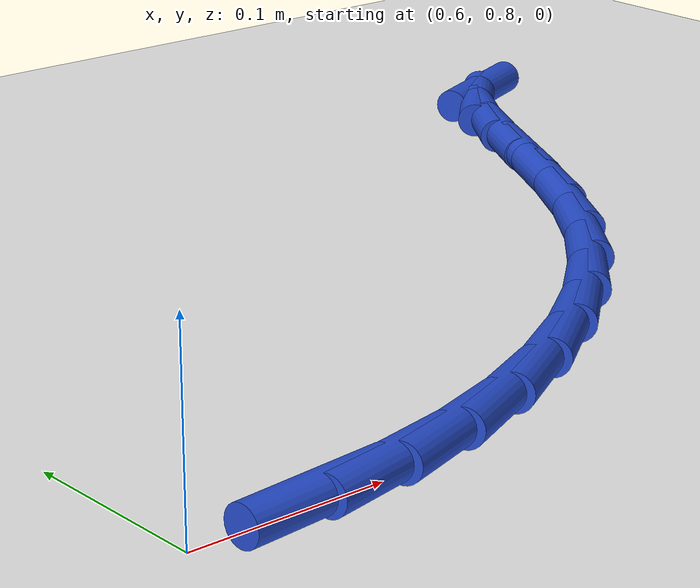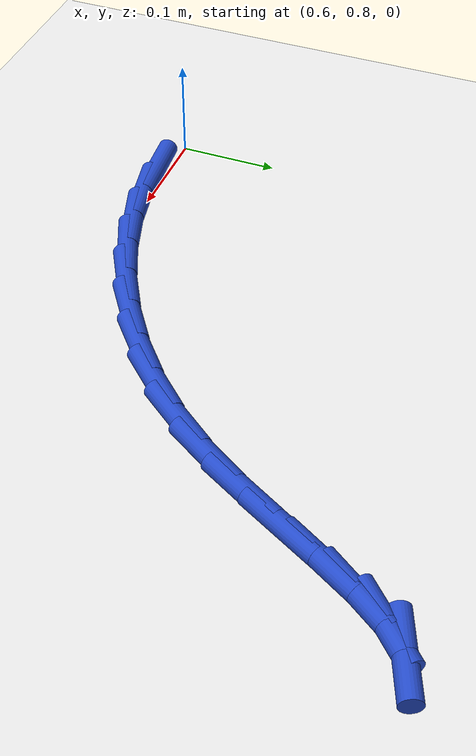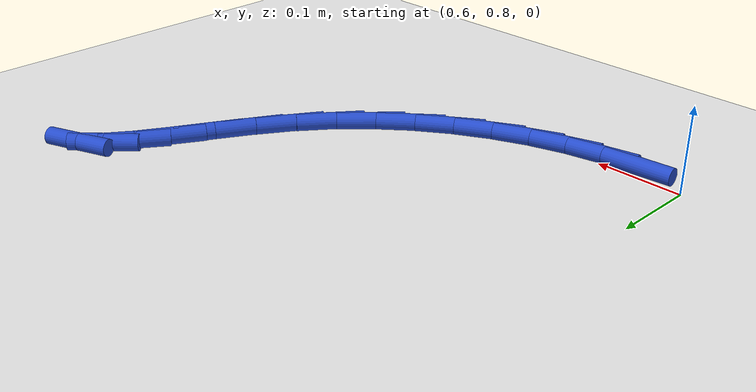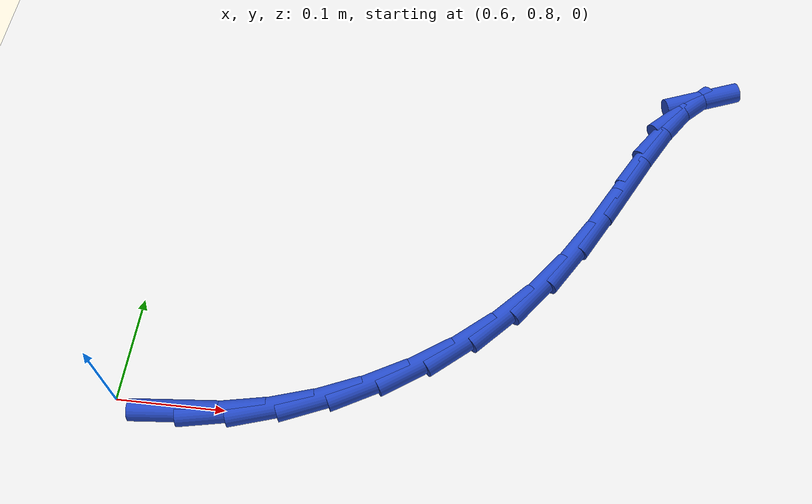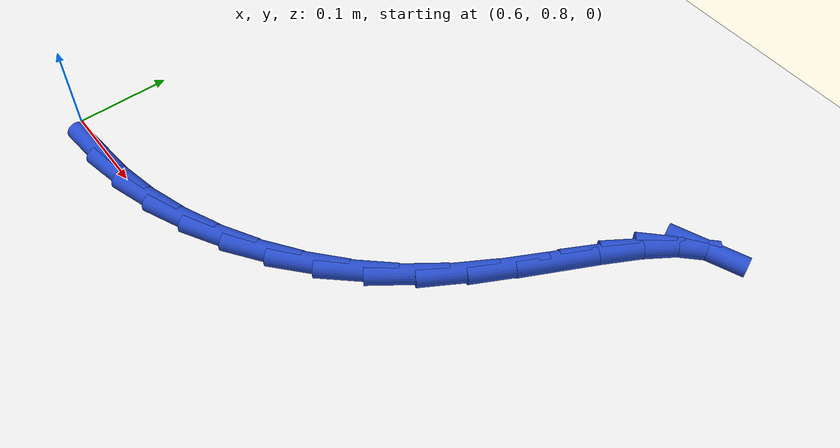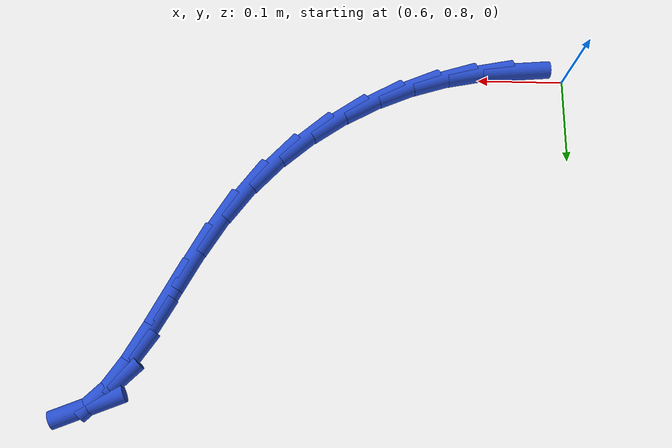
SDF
<sdf version="1.6">
 <world name="default">
  <model name="ground_plane">
   <static>1</static>
   <link name="link">
    <collision name="collision">
     <geometry><plane><normal>0 0 1</normal><size>100 100</size></plane></geometry>
     <surface><friction><ode><mu>100</mu><mu2>50</mu2></ode></friction></surface>
    </collision>
    <visual name="visual">
     <cast_shadows>0</cast_shadows>
     <geometry><plane><normal>0 0 1</normal><size>100 100</size></plane></geometry>
     <material>
      <script><uri>file://media/materials/scripts/gazebo.material</uri><name>Gazebo/WhiteGlow</name></script>
     </material>
    </visual>
   </link>
  </model>
  <model name="line">
   <link name="link_32">
    <pose>0.6573291913371824 0.7916038501465174 0.01 0 1.57 0.08912874974139268</pose>
    <collision name="collision">
     <geometry><cylinder><radius>0.01</radius><length>0.08</length></cylinder></geometry>
    </collision>
    <visual name="visual">
     <material>
      <script><name>Gazebo/Blue</name><uri>file://media/materials/scripts/gazebo.material</uri></script>
     </material>
     <geometry><cylinder><radius>0.01</radius><length>0.08</length></cylinder></geometry>
    </visual>
   </link>
   <link name="link_33">
    <pose>0.6993620464970786 0.7953601378137694 0.01 0 1.57 0.2022764824054154</pose>
    <collision name="collision">
     <geometry><cylinder><radius>0.01</radius><length>0.08</length></cylinder></geometry>
    </collision>
    <visual name="visual">
     <material>
      <script><name>Gazebo/Blue</name><uri>file://media/materials/scripts/gazebo.material</uri></script>
     </material>
     <geometry><cylinder><radius>0.01</radius><length>0.08</length></cylinder></geometry>
    </visual>
   </link>
   <link name="link_34">
    <pose>0.74168407657903 0.8040395888347384 0.01 0 1.57 0.30923556400715935</pose>
    <collision name="collision">
     <geometry><cylinder><radius>0.01</radius><length>0.08</length></cylinder></geometry>
    </collision>
    <visual name="visual">
     <material>
      <script><name>Gazebo/Blue</name><uri>file://media/materials/scripts/gazebo.material</uri></script>
     </material>
     <geometry><cylinder><radius>0.01</radius><length>0.08</length></cylinder></geometry>
    </visual>
   </link>
   <link name="link_35">
    <pose>0.7837149113426448 0.8174678032159395 0.01 0 1.57 0.412316580234775</pose>
    <collision name="collision">
     <geometry><cylinder><radius>0.01</radius><length>0.08</length></cylinder></geometry>
    </collision>
    <visual name="visual">
     <material>
      <script><name>Gazebo/Blue</name><uri>file://media/materials/scripts/gazebo.material</uri></script>
     </material>
     <geometry><cylinder><radius>0.01</radius><length>0.08</length></cylinder></geometry>
    </visual>
   </link>
   <link name="link_36">
    <pose>0.8248741805475321 0.8354703809638884 0.01 0 1.57 0.5136734907480246</pose>
    <collision name="collision">
     <geometry><cylinder><radius>0.01</radius><length>0.08</length></cylinder></geometry>
    </collision>
    <visual name="visual">
     <material>
      <script><name>Gazebo/Blue</name><uri>file://media/materials/scripts/gazebo.material</uri></script>
     </material>
     <geometry><cylinder><radius>0.01</radius><length>0.08</length></cylinder></geometry>
    </visual>
   </link>
   <link name="link_37">
    <pose>0.8645815139533001 0.8578729220851005 0.01 0 1.57 0.6152644523403845</pose>
    <collision name="collision">
     <geometry><cylinder><radius>0.01</radius><length>0.08</length></cylinder></geometry>
    </collision>
    <visual name="visual">
     <material>
      <script><name>Gazebo/Blue</name><uri>file://media/materials/scripts/gazebo.material</uri></script>
     </material>
     <geometry><cylinder><radius>0.01</radius><length>0.08</length></cylinder></geometry>
    </visual>
   </link>
   <link name="link_38">
    <pose>0.9022565413195576 0.8845010265860915 0.01 0 1.57 0.7188253262465767</pose>
    <collision name="collision">
     <geometry><cylinder><radius>0.01</radius><length>0.08</length></cylinder></geometry>
    </collision>
    <visual name="visual">
     <material>
      <script><name>Gazebo/Blue</name><uri>file://media/materials/scripts/gazebo.material</uri></script>
     </material>
     <geometry><cylinder><radius>0.01</radius><length>0.08</length></cylinder></geometry>
    </visual>
   </link>
   <link name="link_39">
    <pose>0.9373188924059142 0.9151802944733775 0.01 0 1.57 0.8258234464255539</pose>
    <collision name="collision">
     <geometry><cylinder><radius>0.01</radius><length>0.08</length></cylinder></geometry>
    </collision>
    <visual name="visual">
     <material>
      <script><name>Gazebo/Blue</name><uri>file://media/materials/scripts/gazebo.material</uri></script>
     </material>
     <geometry><cylinder><radius>0.01</radius><length>0.08</length></cylinder></geometry>
    </visual>
   </link>
   <link name="link_40">
    <pose>0.9691881969719773 0.9497363257534732 0.01 0 1.57 0.9364915513400681</pose>
    <collision name="collision">
     <geometry><cylinder><radius>0.01</radius><length>0.08</length></cylinder></geometry>
    </collision>
    <visual name="visual">
     <material>
      <script><name>Gazebo/Blue</name><uri>file://media/materials/scripts/gazebo.material</uri></script>
     </material>
     <geometry><cylinder><radius>0.01</radius><length>0.08</length></cylinder></geometry>
    </visual>
   </link>
   <link name="link_41">
    <pose>0.9973096342947964 0.9879588866808945 0.01 0 1.57 1.0291346631655864</pose>
    <collision name="collision">
     <geometry><cylinder><radius>0.01</radius><length>0.08</length></cylinder></geometry>
    </collision>
    <visual name="visual">
     <material>
      <script><name>Gazebo/Blue</name><uri>file://media/materials/scripts/gazebo.material</uri></script>
     </material>
     <geometry><cylinder><radius>0.01</radius><length>0.08</length></cylinder></geometry>
    </visual>
   </link>
   <link name="link_42">
    <pose>1.021811196163584 1.0286800841617525 0.01 0 1.57 1.083195679463618</pose>
    <collision name="collision">
     <geometry><cylinder><radius>0.01</radius><length>0.08</length></cylinder></geometry>
    </collision>
    <visual name="visual">
     <material>
      <script><name>Gazebo/Blue</name><uri>file://media/materials/scripts/gazebo.material</uri></script>
     </material>
     <geometry><cylinder><radius>0.01</radius><length>0.08</length></cylinder></geometry>
    </visual>
   </link>
   <link name="link_43">
    <pose>1.0435611611834594 1.069693756796988 0.01 0 1.57 1.0993995483852652</pose>
    <collision name="collision">
     <geometry><cylinder><radius>0.01</radius><length>0.08</length></cylinder></geometry>
    </collision>
    <visual name="visual">
     <material>
      <script><name>Gazebo/Blue</name><uri>file://media/materials/scripts/gazebo.material</uri></script>
     </material>
     <geometry><cylinder><radius>0.01</radius><length>0.08</length></cylinder></geometry>
    </visual>
   </link>
   <link name="link_44">
    <pose>1.0634648758783545 1.1087417546279525 0.01 0 1.57 1.0721623427009501</pose>
    <collision name="collision">
     <geometry><cylinder><radius>0.01</radius><length>0.08</length></cylinder></geometry>
    </collision>
    <visual name="visual">
     <material>
      <script><name>Gazebo/Blue</name><uri>file://media/materials/scripts/gazebo.material</uri></script>
     </material>
     <geometry><cylinder><radius>0.01</radius><length>0.08</length></cylinder></geometry>
    </visual>
   </link>
   <link name="link_45">
    <pose>1.0824276867722027 1.1435659276959964 0.01 0 1.57 0.982001378980577</pose>
    <collision name="collision">
     <geometry><cylinder><radius>0.01</radius><length>0.08</length></cylinder></geometry>
    </collision>
    <visual name="visual">
     <material>
      <script><name>Gazebo/Blue</name><uri>file://media/materials/scripts/gazebo.material</uri></script>
     </material>
     <geometry><cylinder><radius>0.01</radius><length>0.08</length></cylinder></geometry>
    </visual>
   </link>
   <link name="link_46">
    <pose>1.1013549403889367 1.1719081260424706 0.01 0 1.57 0.7804496360444808</pose>
    <collision name="collision">
     <geometry><cylinder><radius>0.01</radius><length>0.08</length></cylinder></geometry>
    </collision>
    <visual name="visual">
     <material>
      <script><name>Gazebo/Blue</name><uri>file://media/materials/scripts/gazebo.material</uri></script>
     </material>
     <geometry><cylinder><radius>0.01</radius><length>0.08</length></cylinder></geometry>
    </visual>
   </link>
   <link name="link_47">
    <pose>1.121151983252489 1.1915101997087263 0.01 0 1.57 0.3834261873655466</pose>
    <collision name="collision">
     <geometry><cylinder><radius>0.01</radius><length>0.08</length></cylinder></geometry>
    </collision>
    <visual name="visual">
     <material>
      <script><name>Gazebo/Blue</name><uri>file://media/materials/scripts/gazebo.material</uri></script>
     </material>
     <geometry><cylinder><radius>0.01</radius><length>0.08</length></cylinder></geometry>
    </visual>
   </link>
  </model>
 </world>
</sdf>
